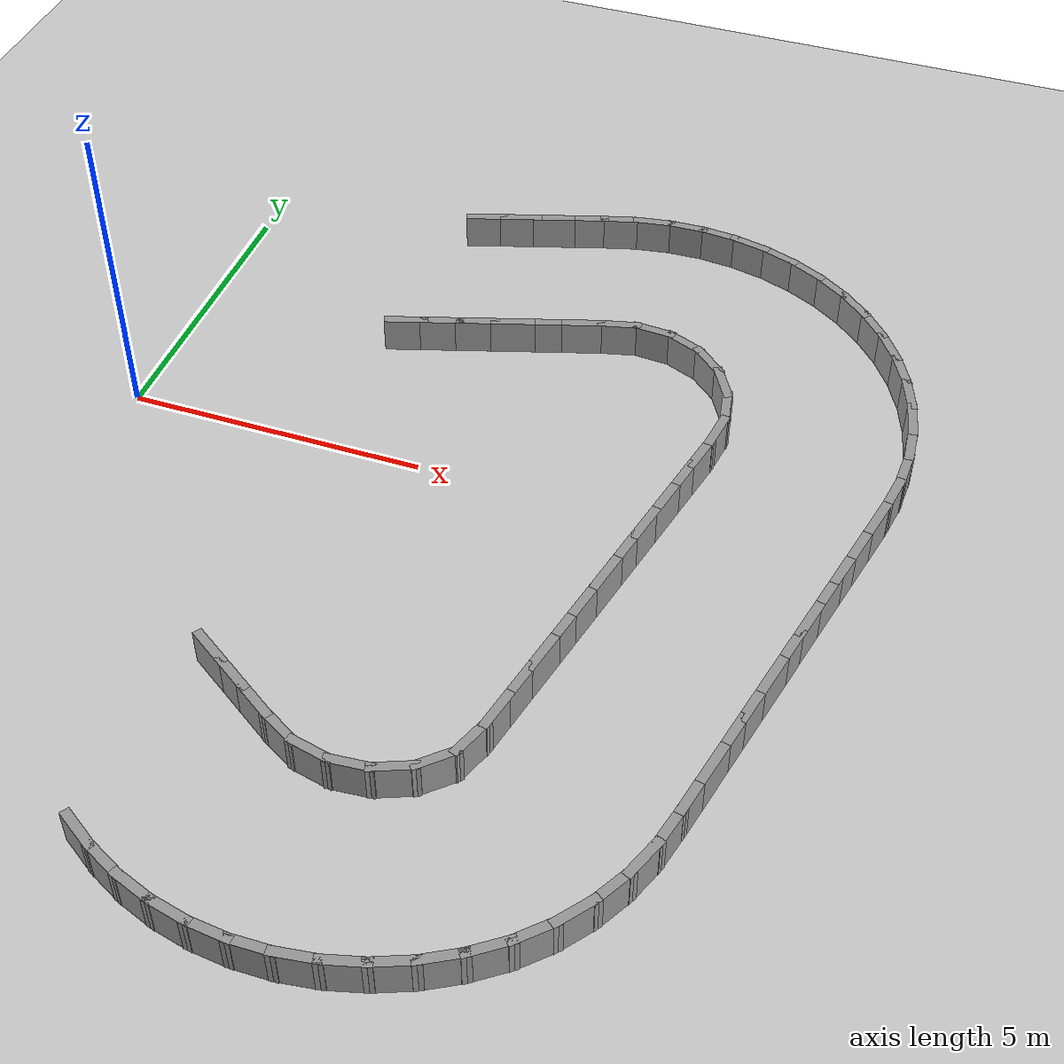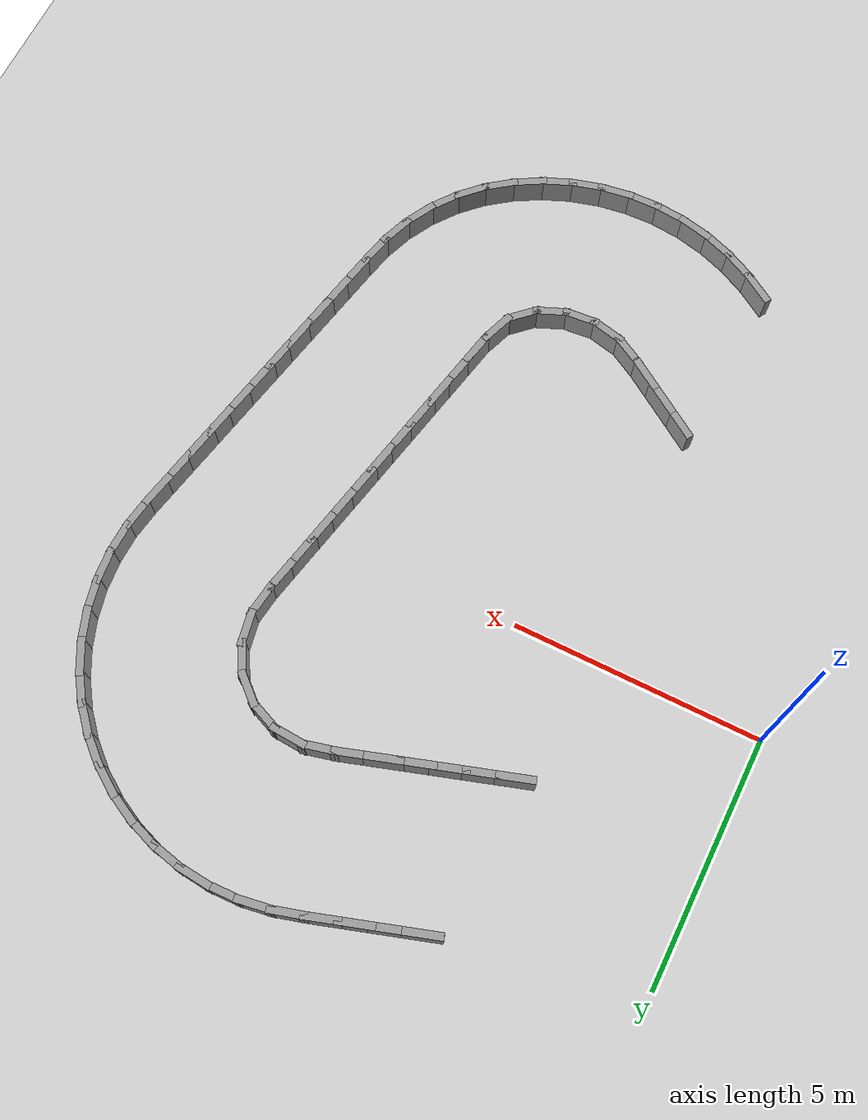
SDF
<sdf version="1.7">
 <world name="default">
  <model name="ground_plane">
   <static>1</static>
   <link name="link">
    <collision name="collision">
     <geometry><plane><normal>0 0 1</normal><size>100 100</size></plane></geometry>
     <surface><friction><ode><mu>100</mu><mu2>50</mu2></ode></friction></surface>
    </collision>
    <visual name="visual">
     <cast_shadows>0</cast_shadows>
     <geometry><plane><normal>0 0 1</normal><size>100 100</size></plane></geometry>
     <material>
      <script><uri>file://media/materials/scripts/gazebo.material</uri><name>Gazebo/Grey</name></script>
     </material>
    </visual>
   </link>
  </model>
  <model name="rand_turn_12">
   <link name="Wall_28">
    <collision name="Wall_28_Collision">
     <geometry><box><size>0.7500 0.1500 0.6000</size></box></geometry>
     <pose>0 0 0.3000 0 -0 0</pose>
    </collision>
    <visual name="Wall_28_Visual">
     <pose>0 0 0.3000 0 -0 0</pose>
     <geometry><box><size>0.7500 0.1500 0.6000</size></box></geometry>
     <material>
      <script><uri>file://media/materials/scripts/gazebo.material</uri><name>Gazebo/Grey</name></script>
      <ambient>1 1 1 1</ambient>
     </material>
    </visual>
    <pose>4.0115 5.9128 0 0 -0 0.30859</pose>
   </link>
   <link name="Wall_29">
    <collision name="Wall_29_Collision">
     <geometry><box><size>0.7500 0.1500 0.6000</size></box></geometry>
     <pose>0 0 0.3000 0 -0 0</pose>
    </collision>
    <visual name="Wall_29_Visual">
     <pose>0 0 0.3000 0 -0 0</pose>
     <geometry><box><size>0.7500 0.1500 0.6000</size></box></geometry>
     <material>
      <script><uri>file://media/materials/scripts/gazebo.material</uri><name>Gazebo/Grey</name></script>
      <ambient>1 1 1 1</ambient>
     </material>
    </visual>
    <pose>4.5832 6.0950 0 0 -0 0.30859</pose>
   </link>
   <link name="Wall_30">
    <collision name="Wall_30_Collision">
     <geometry><box><size>0.7500 0.1500 0.6000</size></box></geometry>
     <pose>0 0 0.3000 0 -0 0</pose>
    </collision>
    <visual name="Wall_30_Visual">
     <pose>0 0 0.3000 0 -0 0</pose>
     <geometry><box><size>0.7500 0.1500 0.6000</size></box></geometry>
     <material>
      <script><uri>file://media/materials/scripts/gazebo.material</uri><name>Gazebo/Grey</name></script>
      <ambient>1 1 1 1</ambient>
     </material>
    </visual>
    <pose>5.1549 6.2772 0 0 -0 0.30859</pose>
   </link>
   <link name="Wall_31">
    <collision name="Wall_31_Collision">
     <geometry><box><size>0.7500 0.1500 0.6000</size></box></geometry>
     <pose>0 0 0.3000 0 -0 0</pose>
    </collision>
    <visual name="Wall_31_Visual">
     <pose>0 0 0.3000 0 -0 0</pose>
     <geometry><box><size>0.7500 0.1500 0.6000</size></box></geometry>
     <material>
      <script><uri>file://media/materials/scripts/gazebo.material</uri><name>Gazebo/Grey</name></script>
      <ambient>1 1 1 1</ambient>
     </material>
    </visual>
    <pose>5.7265 6.4595 0 0 -0 0.30859</pose>
   </link>
   <link name="Wall_32">
    <collision name="Wall_32_Collision">
     <geometry><box><size>0.7497 0.1500 0.6000</size></box></geometry>
     <pose>0 0 0.3000 0 -0 0</pose>
    </collision>
    <visual name="Wall_32_Visual">
     <pose>0 0 0.3000 0 -0 0</pose>
     <geometry><box><size>0.7497 0.1500 0.6000</size></box></geometry>
     <material>
      <script><uri>file://media/materials/scripts/gazebo.material</uri><name>Gazebo/Grey</name></script>
      <ambient>1 1 1 1</ambient>
     </material>
    </visual>
    <pose>6.3008 6.6327 0 0 -0 0.27745</pose>
   </link>
   <link name="Wall_33">
    <collision name="Wall_33_Collision">
     <geometry><box><size>0.7496 0.1500 0.6000</size></box></geometry>
     <pose>0 0 0.3000 0 -0 0</pose>
    </collision>
    <visual name="Wall_33_Visual">
     <pose>0 0 0.3000 0 -0 0</pose>
     <geometry><box><size>0.7496 0.1500 0.6000</size></box></geometry>
     <material>
      <script><uri>file://media/materials/scripts/gazebo.material</uri><name>Gazebo/Grey</name></script>
      <ambient>1 1 1 1</ambient>
     </material>
    </visual>
    <pose>6.8852 6.7620 0 0 -0 0.15782</pose>
   </link>
   <link name="Wall_34">
    <collision name="Wall_34_Collision">
     <geometry><box><size>0.7496 0.1500 0.6000</size></box></geometry>
     <pose>0 0 0.3000 0 -0 0</pose>
    </collision>
    <visual name="Wall_34_Visual">
     <pose>0 0 0.3000 0 -0 0</pose>
     <geometry><box><size>0.7496 0.1500 0.6000</size></box></geometry>
     <material>
      <script><uri>file://media/materials/scripts/gazebo.material</uri><name>Gazebo/Grey</name></script>
      <ambient>1 1 1 1</ambient>
     </material>
    </visual>
    <pose>7.4810 6.8185 0 0 -0 0.03142</pose>
   </link>
   <link name="Wall_35">
    <collision name="Wall_35_Collision">
     <geometry><box><size>0.7496 0.1500 0.6000</size></box></geometry>
     <pose>0 0 0.3000 0 -0 0</pose>
    </collision>
    <visual name="Wall_35_Visual">
     <pose>0 0 0.3000 0 -0 0</pose>
     <geometry><box><size>0.7496 0.1500 0.6000</size></box></geometry>
     <material>
      <script><uri>file://media/materials/scripts/gazebo.material</uri><name>Gazebo/Grey</name></script>
      <ambient>1 1 1 1</ambient>
     </material>
    </visual>
    <pose>8.0791 6.7997 0 0 -0 -0.09425</pose>
   </link>
   <link name="Wall_36">
    <collision name="Wall_36_Collision">
     <geometry><box><size>0.7496 0.1500 0.6000</size></box></geometry>
     <pose>0 0 0.3000 0 -0 0</pose>
    </collision>
    <visual name="Wall_36_Visual">
     <pose>0 0 0.3000 0 -0 0</pose>
     <geometry><box><size>0.7496 0.1500 0.6000</size></box></geometry>
     <material>
      <script><uri>file://media/materials/scripts/gazebo.material</uri><name>Gazebo/Grey</name></script>
      <ambient>1 1 1 1</ambient>
     </material>
    </visual>
    <pose>8.6701 6.7061 0 0 -0 -0.21991</pose>
   </link>
   <link name="Wall_37">
    <collision name="Wall_37_Collision">
     <geometry><box><size>0.7496 0.1500 0.6000</size></box></geometry>
     <pose>0 0 0.3000 0 -0 0</pose>
    </collision>
    <visual name="Wall_37_Visual">
     <pose>0 0 0.3000 0 -0 0</pose>
     <geometry><box><size>0.7496 0.1500 0.6000</size></box></geometry>
     <material>
      <script><uri>file://media/materials/scripts/gazebo.material</uri><name>Gazebo/Grey</name></script>
      <ambient>1 1 1 1</ambient>
     </material>
    </visual>
    <pose>9.2447 6.5392 0 0 -0 -0.34558</pose>
   </link>
   <link name="Wall_38">
    <collision name="Wall_38_Collision">
     <geometry><box><size>0.7496 0.1500 0.6000</size></box></geometry>
     <pose>0 0 0.3000 0 -0 0</pose>
    </collision>
    <visual name="Wall_38_Visual">
     <pose>0 0 0.3000 0 -0 0</pose>
     <geometry><box><size>0.7496 0.1500 0.6000</size></box></geometry>
     <material>
      <script><uri>file://media/materials/scripts/gazebo.material</uri><name>Gazebo/Grey</name></script>
      <ambient>1 1 1 1</ambient>
     </material>
    </visual>
    <pose>9.7939 6.3015 0 0 -0 -0.47124</pose>
   </link>
   <link name="Wall_39">
    <collision name="Wall_39_Collision">
     <geometry><box><size>0.7496 0.1500 0.6000</size></box></geometry>
     <pose>0 0 0.3000 0 -0 0</pose>
    </collision>
    <visual name="Wall_39_Visual">
     <pose>0 0 0.3000 0 -0 0</pose>
     <geometry><box><size>0.7496 0.1500 0.6000</size></box></geometry>
     <material>
      <script><uri>file://media/materials/scripts/gazebo.material</uri><name>Gazebo/Grey</name></script>
      <ambient>1 1 1 1</ambient>
     </material>
    </visual>
    <pose>10.3090 5.9969 0 0 -0 -0.59690</pose>
   </link>
   <link name="Wall_40">
    <collision name="Wall_40_Collision">
     <geometry><box><size>0.7496 0.1500 0.6000</size></box></geometry>
     <pose>0 0 0.3000 0 -0 0</pose>
    </collision>
    <visual name="Wall_40_Visual">
     <pose>0 0 0.3000 0 -0 0</pose>
     <geometry><box><size>0.7496 0.1500 0.6000</size></box></geometry>
     <material>
      <script><uri>file://media/materials/scripts/gazebo.material</uri><name>Gazebo/Grey</name></script>
      <ambient>1 1 1 1</ambient>
     </material>
    </visual>
    <pose>10.7817 5.6301 0 0 -0 -0.72289</pose>
   </link>
   <link name="Wall_41">
    <collision name="Wall_41_Collision">
     <geometry><box><size>0.7496 0.1500 0.6000</size></box></geometry>
     <pose>0 0 0.3000 0 -0 0</pose>
    </collision>
    <visual name="Wall_41_Visual">
     <pose>0 0 0.3000 0 -0 0</pose>
     <geometry><box><size>0.7496 0.1500 0.6000</size></box></geometry>
     <material>
      <script><uri>file://media/materials/scripts/gazebo.material</uri><name>Gazebo/Grey</name></script>
      <ambient>1 1 1 1</ambient>
     </material>
    </visual>
    <pose>11.2046 5.2066 0 0 -0 -0.84928</pose>
   </link>
   <link name="Wall_42">
    <collision name="Wall_42_Collision">
     <geometry><box><size>0.7496 0.1500 0.6000</size></box></geometry>
     <pose>0 0 0.3000 0 -0 0</pose>
    </collision>
    <visual name="Wall_42_Visual">
     <pose>0 0 0.3000 0 -0 0</pose>
     <geometry><box><size>0.7496 0.1500 0.6000</size></box></geometry>
     <material>
      <script><uri>file://media/materials/scripts/gazebo.material</uri><name>Gazebo/Grey</name></script>
      <ambient>1 1 1 1</ambient>
     </material>
    </visual>
    <pose>11.5708 4.7334 0 0 -0 -0.97494</pose>
   </link>
   <link name="Wall_43">
    <collision name="Wall_43_Collision">
     <geometry><box><size>0.7496 0.1500 0.6000</size></box></geometry>
     <pose>0 0 0.3000 0 -0 0</pose>
    </collision>
    <visual name="Wall_43_Visual">
     <pose>0 0 0.3000 0 -0 0</pose>
     <geometry><box><size>0.7496 0.1500 0.6000</size></box></geometry>
     <material>
      <script><uri>file://media/materials/scripts/gazebo.material</uri><name>Gazebo/Grey</name></script>
      <ambient>1 1 1 1</ambient>
     </material>
    </visual>
    <pose>11.8749 4.2180 0 0 -0 -1.10061</pose>
   </link>
   <link name="Wall_44">
    <collision name="Wall_44_Collision">
     <geometry><box><size>0.7496 0.1500 0.6000</size></box></geometry>
     <pose>0 0 0.3000 0 -0 0</pose>
    </collision>
    <visual name="Wall_44_Visual">
     <pose>0 0 0.3000 0 -0 0</pose>
     <geometry><box><size>0.7496 0.1500 0.6000</size></box></geometry>
     <material>
      <script><uri>file://media/materials/scripts/gazebo.material</uri><name>Gazebo/Grey</name></script>
      <ambient>1 1 1 1</ambient>
     </material>
    </visual>
    <pose>12.1120 3.6686 0 0 -0 -1.22627</pose>
   </link>
   <link name="Wall_45">
    <collision name="Wall_45_Collision">
     <geometry><box><size>0.7496 0.1500 0.6000</size></box></geometry>
     <pose>0 0 0.3000 0 -0 0</pose>
    </collision>
    <visual name="Wall_45_Visual">
     <pose>0 0 0.3000 0 -0 0</pose>
     <geometry><box><size>0.7496 0.1500 0.6000</size></box></geometry>
     <material>
      <script><uri>file://media/materials/scripts/gazebo.material</uri><name>Gazebo/Grey</name></script>
      <ambient>1 1 1 1</ambient>
     </material>
    </visual>
    <pose>12.2783 3.0938 0 0 -0 -1.35194</pose>
   </link>
   <link name="Wall_46">
    <collision name="Wall_46_Collision">
     <geometry><box><size>0.7496 0.1500 0.6000</size></box></geometry>
     <pose>0 0 0.3000 0 -0 0</pose>
    </collision>
    <visual name="Wall_46_Visual">
     <pose>0 0 0.3000 0 -0 0</pose>
     <geometry><box><size>0.7496 0.1500 0.6000</size></box></geometry>
     <material>
      <script><uri>file://media/materials/scripts/gazebo.material</uri><name>Gazebo/Grey</name></script>
      <ambient>1 1 1 1</ambient>
     </material>
    </visual>
    <pose>12.3713 2.5027 0 0 -0 -1.47760</pose>
   </link>
   <link name="Wall_47">
    <collision name="Wall_47_Collision">
     <geometry><box><size>0.7496 0.1500 0.6000</size></box></geometry>
     <pose>0 0 0.3000 0 -0 0</pose>
    </collision>
    <visual name="Wall_47_Visual">
     <pose>0 0 0.3000 0 -0 0</pose>
     <geometry><box><size>0.7496 0.1500 0.6000</size></box></geometry>
     <material>
      <script><uri>file://media/materials/scripts/gazebo.material</uri><name>Gazebo/Grey</name></script>
      <ambient>1 1 1 1</ambient>
     </material>
    </visual>
    <pose>12.3894 1.9046 0 0 -0 -1.60360</pose>
   </link>
   <link name="Wall_48">
    <collision name="Wall_48_Collision">
     <geometry><box><size>0.7496 0.1500 0.6000</size></box></geometry>
     <pose>0 0 0.3000 0 -0 0</pose>
    </collision>
    <visual name="Wall_48_Visual">
     <pose>0 0 0.3000 0 -0 0</pose>
     <geometry><box><size>0.7496 0.1500 0.6000</size></box></geometry>
     <material>
      <script><uri>file://media/materials/scripts/gazebo.material</uri><name>Gazebo/Grey</name></script>
      <ambient>1 1 1 1</ambient>
     </material>
    </visual>
    <pose>12.3318 1.3089 0 0 -0 -1.73055</pose>
   </link>
   <link name="Wall_49">
    <collision name="Wall_49_Collision">
     <geometry><box><size>0.7500 0.1500 0.6000</size></box></geometry>
     <pose>0 0 0.3000 0 -0 0</pose>
    </collision>
    <visual name="Wall_49_Visual">
     <pose>0 0 0.3000 0 -0 0</pose>
     <geometry><box><size>0.7500 0.1500 0.6000</size></box></geometry>
     <material>
      <script><uri>file://media/materials/scripts/gazebo.material</uri><name>Gazebo/Grey</name></script>
      <ambient>1 1 1 1</ambient>
     </material>
    </visual>
    <pose>12.2216 0.7196 0 0 -0 -1.78095</pose>
   </link>
   <link name="Wall_50">
    <collision name="Wall_50_Collision">
     <geometry><box><size>0.7500 0.1500 0.6000</size></box></geometry>
     <pose>0 0 0.3000 0 -0 0</pose>
    </collision>
    <visual name="Wall_50_Visual">
     <pose>0 0 0.3000 0 -0 0</pose>
     <geometry><box><size>0.7500 0.1500 0.6000</size></box></geometry>
     <material>
      <script><uri>file://media/materials/scripts/gazebo.material</uri><name>Gazebo/Grey</name></script>
      <ambient>1 1 1 1</ambient>
     </material>
    </visual>
    <pose>12.0964 0.1328 0 0 -0 -1.78095</pose>
   </link>
   <link name="Wall_51">
    <collision name="Wall_51_Collision">
     <geometry><box><size>0.7500 0.1500 0.6000</size></box></geometry>
     <pose>0 0 0.3000 0 -0 0</pose>
    </collision>
    <visual name="Wall_51_Visual">
     <pose>0 0 0.3000 0 -0 0</pose>
     <geometry><box><size>0.7500 0.1500 0.6000</size></box></geometry>
     <material>
      <script><uri>file://media/materials/scripts/gazebo.material</uri><name>Gazebo/Grey</name></script>
      <ambient>1 1 1 1</ambient>
     </material>
    </visual>
    <pose>11.9712 -0.4540 0 0 -0 -1.78095</pose>
   </link>
   <link name="Wall_52">
    <collision name="Wall_52_Collision">
     <geometry><box><size>0.7500 0.1500 0.6000</size></box></geometry>
     <pose>0 0 0.3000 0 -0 0</pose>
    </collision>
    <visual name="Wall_52_Visual">
     <pose>0 0 0.3000 0 -0 0</pose>
     <geometry><box><size>0.7500 0.1500 0.6000</size></box></geometry>
     <material>
      <script><uri>file://media/materials/scripts/gazebo.material</uri><name>Gazebo/Grey</name></script>
      <ambient>1 1 1 1</ambient>
     </material>
    </visual>
    <pose>11.8461 -1.0408 0 0 -0 -1.78095</pose>
   </link>
   <link name="Wall_53">
    <collision name="Wall_53_Collision">
     <geometry><box><size>0.7500 0.1500 0.6000</size></box></geometry>
     <pose>0 0 0.3000 0 -0 0</pose>
    </collision>
    <visual name="Wall_53_Visual">
     <pose>0 0 0.3000 0 -0 0</pose>
     <geometry><box><size>0.7500 0.1500 0.6000</size></box></geometry>
     <material>
      <script><uri>file://media/materials/scripts/gazebo.material</uri><name>Gazebo/Grey</name></script>
      <ambient>1 1 1 1</ambient>
     </material>
    </visual>
    <pose>11.7209 -1.6276 0 0 -0 -1.78095</pose>
   </link>
   <link name="Wall_54">
    <collision name="Wall_54_Collision">
     <geometry><box><size>0.7500 0.1500 0.6000</size></box></geometry>
     <pose>0 0 0.3000 0 -0 0</pose>
    </collision>
    <visual name="Wall_54_Visual">
     <pose>0 0 0.3000 0 -0 0</pose>
     <geometry><box><size>0.7500 0.1500 0.6000</size></box></geometry>
     <material>
      <script><uri>file://media/materials/scripts/gazebo.material</uri><name>Gazebo/Grey</name></script>
      <ambient>1 1 1 1</ambient>
     </material>
    </visual>
    <pose>11.5957 -2.2144 0 0 -0 -1.78095</pose>
   </link>
   <link name="Wall_55">
    <collision name="Wall_55_Collision">
     <geometry><box><size>0.7500 0.1500 0.6000</size></box></geometry>
     <pose>0 0 0.3000 0 -0 0</pose>
    </collision>
    <visual name="Wall_55_Visual">
     <pose>0 0 0.3000 0 -0 0</pose>
     <geometry><box><size>0.7500 0.1500 0.6000</size></box></geometry>
     <material>
      <script><uri>file://media/materials/scripts/gazebo.material</uri><name>Gazebo/Grey</name></script>
      <ambient>1 1 1 1</ambient>
     </material>
    </visual>
    <pose>11.4706 -2.8012 0 0 -0 -1.78095</pose>
   </link>
   <link name="Wall_56">
    <collision name="Wall_56_Collision">
     <geometry><box><size>0.7500 0.1500 0.6000</size></box></geometry>
     <pose>0 0 0.3000 0 -0 0</pose>
    </collision>
    <visual name="Wall_56_Visual">
     <pose>0 0 0.3000 0 -0 0</pose>
     <geometry><box><size>0.7500 0.1500 0.6000</size></box></geometry>
     <material>
      <script><uri>file://media/materials/scripts/gazebo.material</uri><name>Gazebo/Grey</name></script>
      <ambient>1 1 1 1</ambient>
     </material>
    </visual>
    <pose>11.3454 -3.3880 0 0 -0 -1.78095</pose>
   </link>
   <link name="Wall_57">
    <collision name="Wall_57_Collision">
     <geometry><box><size>0.7500 0.1500 0.6000</size></box></geometry>
     <pose>0 0 0.3000 0 -0 0</pose>
    </collision>
    <visual name="Wall_57_Visual">
     <pose>0 0 0.3000 0 -0 0</pose>
     <geometry><box><size>0.7500 0.1500 0.6000</size></box></geometry>
     <material>
      <script><uri>file://media/materials/scripts/gazebo.material</uri><name>Gazebo/Grey</name></script>
      <ambient>1 1 1 1</ambient>
     </material>
    </visual>
    <pose>11.2202 -3.9748 0 0 -0 -1.78095</pose>
   </link>
   <link name="Wall_58">
    <collision name="Wall_58_Collision">
     <geometry><box><size>0.7500 0.1500 0.6000</size></box></geometry>
     <pose>0 0 0.3000 0 -0 0</pose>
    </collision>
    <visual name="Wall_58_Visual">
     <pose>0 0 0.3000 0 -0 0</pose>
     <geometry><box><size>0.7500 0.1500 0.6000</size></box></geometry>
     <material>
      <script><uri>file://media/materials/scripts/gazebo.material</uri><name>Gazebo/Grey</name></script>
      <ambient>1 1 1 1</ambient>
     </material>
    </visual>
    <pose>11.0951 -4.5616 0 0 -0 -1.78095</pose>
   </link>
   <link name="Wall_59">
    <collision name="Wall_59_Collision">
     <geometry><box><size>0.7500 0.1500 0.6000</size></box></geometry>
     <pose>0 0 0.3000 0 -0 0</pose>
    </collision>
    <visual name="Wall_59_Visual">
     <pose>0 0 0.3000 0 -0 0</pose>
     <geometry><box><size>0.7500 0.1500 0.6000</size></box></geometry>
     <material>
      <script><uri>file://media/materials/scripts/gazebo.material</uri><name>Gazebo/Grey</name></script>
      <ambient>1 1 1 1</ambient>
     </material>
    </visual>
    <pose>10.9699 -5.1484 0 0 -0 -1.78095</pose>
   </link>
   <link name="Wall_60">
    <collision name="Wall_60_Collision">
     <geometry><box><size>0.7498 0.1500 0.6000</size></box></geometry>
     <pose>0 0 0.3000 0 -0 0</pose>
    </collision>
    <visual name="Wall_60_Visual">
     <pose>0 0 0.3000 0 -0 0</pose>
     <geometry><box><size>0.7498 0.1500 0.6000</size></box></geometry>
     <material>
      <script><uri>file://media/materials/scripts/gazebo.material</uri><name>Gazebo/Grey</name></script>
      <ambient>1 1 1 1</ambient>
     </material>
    </visual>
    <pose>10.8380 -5.7336 0 0 -0 -1.80396</pose>
   </link>
   <link name="Wall_61">
    <collision name="Wall_61_Collision">
     <geometry><box><size>0.7495 0.1500 0.6000</size></box></geometry>
     <pose>0 0 0.3000 0 -0 0</pose>
    </collision>
    <visual name="Wall_61_Visual">
     <pose>0 0 0.3000 0 -0 0</pose>
     <geometry><box><size>0.7495 0.1500 0.6000</size></box></geometry>
     <material>
      <script><uri>file://media/materials/scripts/gazebo.material</uri><name>Gazebo/Grey</name></script>
      <ambient>1 1 1 1</ambient>
     </material>
    </visual>
    <pose>10.6629 -6.3058 0 0 -0 -1.93152</pose>
   </link>
   <link name="Wall_62">
    <collision name="Wall_62_Collision">
     <geometry><box><size>0.7495 0.1500 0.6000</size></box></geometry>
     <pose>0 0 0.3000 0 -0 0</pose>
    </collision>
    <visual name="Wall_62_Visual">
     <pose>0 0 0.3000 0 -0 0</pose>
     <geometry><box><size>0.7495 0.1500 0.6000</size></box></geometry>
     <material>
      <script><uri>file://media/materials/scripts/gazebo.material</uri><name>Gazebo/Grey</name></script>
      <ambient>1 1 1 1</ambient>
     </material>
    </visual>
    <pose>10.4126 -6.8489 0 0 -0 -2.07403</pose>
   </link>
   <link name="Wall_63">
    <collision name="Wall_63_Collision">
     <geometry><box><size>0.7495 0.1500 0.6000</size></box></geometry>
     <pose>0 0 0.3000 0 -0 0</pose>
    </collision>
    <visual name="Wall_63_Visual">
     <pose>0 0 0.3000 0 -0 0</pose>
     <geometry><box><size>0.7495 0.1500 0.6000</size></box></geometry>
     <material>
      <script><uri>file://media/materials/scripts/gazebo.material</uri><name>Gazebo/Grey</name></script>
      <ambient>1 1 1 1</ambient>
     </material>
    </visual>
    <pose>10.0875 -7.3508 0 0 -0 -2.21709</pose>
   </link>
   <link name="Wall_64">
    <collision name="Wall_64_Collision">
     <geometry><box><size>0.7495 0.1500 0.6000</size></box></geometry>
     <pose>0 0 0.3000 0 -0 0</pose>
    </collision>
    <visual name="Wall_64_Visual">
     <pose>0 0 0.3000 0 -0 0</pose>
     <geometry><box><size>0.7495 0.1500 0.6000</size></box></geometry>
     <material>
      <script><uri>file://media/materials/scripts/gazebo.material</uri><name>Gazebo/Grey</name></script>
      <ambient>1 1 1 1</ambient>
     </material>
    </visual>
    <pose>9.6943 -7.8013 0 0 -0 -2.35969</pose>
   </link>
   <link name="Wall_65">
    <collision name="Wall_65_Collision">
     <geometry><box><size>0.7495 0.1500 0.6000</size></box></geometry>
     <pose>0 0 0.3000 0 -0 0</pose>
    </collision>
    <visual name="Wall_65_Visual">
     <pose>0 0 0.3000 0 -0 0</pose>
     <geometry><box><size>0.7495 0.1500 0.6000</size></box></geometry>
     <material>
      <script><uri>file://media/materials/scripts/gazebo.material</uri><name>Gazebo/Grey</name></script>
      <ambient>1 1 1 1</ambient>
     </material>
    </visual>
    <pose>9.2407 -8.1908 0 0 -0 -2.50423</pose>
   </link>
   <link name="Wall_66">
    <collision name="Wall_66_Collision">
     <geometry><box><size>0.7496 0.1500 0.6000</size></box></geometry>
     <pose>0 0 0.3000 0 -0 0</pose>
    </collision>
    <visual name="Wall_66_Visual">
     <pose>0 0 0.3000 0 -0 0</pose>
     <geometry><box><size>0.7496 0.1500 0.6000</size></box></geometry>
     <material>
      <script><uri>file://media/materials/scripts/gazebo.material</uri><name>Gazebo/Grey</name></script>
      <ambient>1 1 1 1</ambient>
     </material>
    </visual>
    <pose>8.7387 -8.5166 0 0 -0 -2.62776</pose>
   </link>
   <link name="Wall_67">
    <collision name="Wall_67_Collision">
     <geometry><box><size>0.7496 0.1500 0.6000</size></box></geometry>
     <pose>0 0 0.3000 0 -0 0</pose>
    </collision>
    <visual name="Wall_67_Visual">
     <pose>0 0 0.3000 0 -0 0</pose>
     <geometry><box><size>0.7496 0.1500 0.6000</size></box></geometry>
     <material>
      <script><uri>file://media/materials/scripts/gazebo.material</uri><name>Gazebo/Grey</name></script>
      <ambient>1 1 1 1</ambient>
     </material>
    </visual>
    <pose>8.2004 -8.7781 0 0 -0 -2.75095</pose>
   </link>
   <link name="Wall_68">
    <collision name="Wall_68_Collision">
     <geometry><box><size>0.7496 0.1500 0.6000</size></box></geometry>
     <pose>0 0 0.3000 0 -0 0</pose>
    </collision>
    <visual name="Wall_68_Visual">
     <pose>0 0 0.3000 0 -0 0</pose>
     <geometry><box><size>0.7496 0.1500 0.6000</size></box></geometry>
     <material>
      <script><uri>file://media/materials/scripts/gazebo.material</uri><name>Gazebo/Grey</name></script>
      <ambient>1 1 1 1</ambient>
     </material>
    </visual>
    <pose>7.6341 -8.9717 0 0 -0 -2.87348</pose>
   </link>
   <link name="Wall_69">
    <collision name="Wall_69_Collision">
     <geometry><box><size>0.7496 0.1500 0.6000</size></box></geometry>
     <pose>0 0 0.3000 0 -0 0</pose>
    </collision>
    <visual name="Wall_69_Visual">
     <pose>0 0 0.3000 0 -0 0</pose>
     <geometry><box><size>0.7496 0.1500 0.6000</size></box></geometry>
     <material>
      <script><uri>file://media/materials/scripts/gazebo.material</uri><name>Gazebo/Grey</name></script>
      <ambient>1 1 1 1</ambient>
     </material>
    </visual>
    <pose>7.0484 -9.0947 0 0 -0 -2.99567</pose>
   </link>
   <link name="Wall_70">
    <collision name="Wall_70_Collision">
     <geometry><box><size>0.7496 0.1500 0.6000</size></box></geometry>
     <pose>0 0 0.3000 0 -0 0</pose>
    </collision>
    <visual name="Wall_70_Visual">
     <pose>0 0 0.3000 0 -0 0</pose>
     <geometry><box><size>0.7496 0.1500 0.6000</size></box></geometry>
     <material>
      <script><uri>file://media/materials/scripts/gazebo.material</uri><name>Gazebo/Grey</name></script>
      <ambient>1 1 1 1</ambient>
     </material>
    </visual>
    <pose>6.4520 -9.1454 0 0 -0 -3.11786</pose>
   </link>
   <link name="Wall_71">
    <collision name="Wall_71_Collision">
     <geometry><box><size>0.7496 0.1500 0.6000</size></box></geometry>
     <pose>0 0 0.3000 0 -0 0</pose>
    </collision>
    <visual name="Wall_71_Visual">
     <pose>0 0 0.3000 0 -0 0</pose>
     <geometry><box><size>0.7496 0.1500 0.6000</size></box></geometry>
     <material>
      <script><uri>file://media/materials/scripts/gazebo.material</uri><name>Gazebo/Grey</name></script>
      <ambient>1 1 1 1</ambient>
     </material>
    </visual>
    <pose>5.8540 -9.1231 0 0 -0 3.04313</pose>
   </link>
   <link name="Wall_72">
    <collision name="Wall_72_Collision">
     <geometry><box><size>0.7496 0.1500 0.6000</size></box></geometry>
     <pose>0 0 0.3000 0 -0 0</pose>
    </collision>
    <visual name="Wall_72_Visual">
     <pose>0 0 0.3000 0 -0 0</pose>
     <geometry><box><size>0.7496 0.1500 0.6000</size></box></geometry>
     <material>
      <script><uri>file://media/materials/scripts/gazebo.material</uri><name>Gazebo/Grey</name></script>
      <ambient>1 1 1 1</ambient>
     </material>
    </visual>
    <pose>5.2631 -9.0278 0 0 -0 2.92020</pose>
   </link>
   <link name="Wall_73">
    <collision name="Wall_73_Collision">
     <geometry><box><size>0.7496 0.1500 0.6000</size></box></geometry>
     <pose>0 0 0.3000 0 -0 0</pose>
    </collision>
    <visual name="Wall_73_Visual">
     <pose>0 0 0.3000 0 -0 0</pose>
     <geometry><box><size>0.7496 0.1500 0.6000</size></box></geometry>
     <material>
      <script><uri>file://media/materials/scripts/gazebo.material</uri><name>Gazebo/Grey</name></script>
      <ambient>1 1 1 1</ambient>
     </material>
    </visual>
    <pose>4.6884 -8.8608 0 0 -0 2.79741</pose>
   </link>
   <link name="Wall_74">
    <collision name="Wall_74_Collision">
     <geometry><box><size>0.7496 0.1500 0.6000</size></box></geometry>
     <pose>0 0 0.3000 0 -0 0</pose>
    </collision>
    <visual name="Wall_74_Visual">
     <pose>0 0 0.3000 0 -0 0</pose>
     <geometry><box><size>0.7496 0.1500 0.6000</size></box></geometry>
     <material>
      <script><uri>file://media/materials/scripts/gazebo.material</uri><name>Gazebo/Grey</name></script>
      <ambient>1 1 1 1</ambient>
     </material>
    </visual>
    <pose>4.1384 -8.6248 0 0 -0 2.67522</pose>
   </link>
   <link name="Wall_75">
    <collision name="Wall_75_Collision">
     <geometry><box><size>0.7499 0.1500 0.6000</size></box></geometry>
     <pose>0 0 0.3000 0 -0 0</pose>
    </collision>
    <visual name="Wall_75_Visual">
     <pose>0 0 0.3000 0 -0 0</pose>
     <geometry><box><size>0.7499 0.1500 0.6000</size></box></geometry>
     <material>
      <script><uri>file://media/materials/scripts/gazebo.material</uri><name>Gazebo/Grey</name></script>
      <ambient>1 1 1 1</ambient>
     </material>
    </visual>
    <pose>3.6180 -8.3283 0 0 -0 2.57213</pose>
   </link>
   <link name="Wall_114">
    <collision name="Wall_114_Collision">
     <geometry><box><size>0.7500 0.1500 0.6000</size></box></geometry>
     <pose>0 0 0.3000 0 -0 0</pose>
    </collision>
    <visual name="Wall_114_Visual">
     <pose>0 0 0.3000 0 -0 0</pose>
     <geometry><box><size>0.7500 0.1500 0.6000</size></box></geometry>
     <material>
      <script><uri>file://media/materials/scripts/gazebo.material</uri><name>Gazebo/Grey</name></script>
      <ambient>1 1 1 1</ambient>
     </material>
    </visual>
    <pose>3.7281 2.7239 0 0 -0 0.30859</pose>
   </link>
   <link name="Wall_115">
    <collision name="Wall_115_Collision">
     <geometry><box><size>0.7500 0.1500 0.6000</size></box></geometry>
     <pose>0 0 0.3000 0 -0 0</pose>
    </collision>
    <visual name="Wall_115_Visual">
     <pose>0 0 0.3000 0 -0 0</pose>
     <geometry><box><size>0.7500 0.1500 0.6000</size></box></geometry>
     <material>
      <script><uri>file://media/materials/scripts/gazebo.material</uri><name>Gazebo/Grey</name></script>
      <ambient>1 1 1 1</ambient>
     </material>
    </visual>
    <pose>4.2998 2.9061 0 0 -0 0.30859</pose>
   </link>
   <link name="Wall_116">
    <collision name="Wall_116_Collision">
     <geometry><box><size>0.7500 0.1500 0.6000</size></box></geometry>
     <pose>0 0 0.3000 0 -0 0</pose>
    </collision>
    <visual name="Wall_116_Visual">
     <pose>0 0 0.3000 0 -0 0</pose>
     <geometry><box><size>0.7500 0.1500 0.6000</size></box></geometry>
     <material>
      <script><uri>file://media/materials/scripts/gazebo.material</uri><name>Gazebo/Grey</name></script>
      <ambient>1 1 1 1</ambient>
     </material>
    </visual>
    <pose>4.8714 3.0883 0 0 -0 0.30859</pose>
   </link>
   <link name="Wall_117">
    <collision name="Wall_117_Collision">
     <geometry><box><size>0.7500 0.1500 0.6000</size></box></geometry>
     <pose>0 0 0.3000 0 -0 0</pose>
    </collision>
    <visual name="Wall_117_Visual">
     <pose>0 0 0.3000 0 -0 0</pose>
     <geometry><box><size>0.7500 0.1500 0.6000</size></box></geometry>
     <material>
      <script><uri>file://media/materials/scripts/gazebo.material</uri><name>Gazebo/Grey</name></script>
      <ambient>1 1 1 1</ambient>
     </material>
    </visual>
    <pose>5.4431 3.2705 0 0 -0 0.30859</pose>
   </link>
   <link name="Wall_118">
    <collision name="Wall_118_Collision">
     <geometry><box><size>0.7500 0.1500 0.6000</size></box></geometry>
     <pose>0 0 0.3000 0 -0 0</pose>
    </collision>
    <visual name="Wall_118_Visual">
     <pose>0 0 0.3000 0 -0 0</pose>
     <geometry><box><size>0.7500 0.1500 0.6000</size></box></geometry>
     <material>
      <script><uri>file://media/materials/scripts/gazebo.material</uri><name>Gazebo/Grey</name></script>
      <ambient>1 1 1 1</ambient>
     </material>
    </visual>
    <pose>6.0147 3.4528 0 0 -0 0.30859</pose>
   </link>
   <link name="Wall_119">
    <collision name="Wall_119_Collision">
     <geometry><box><size>0.7500 0.1500 0.6000</size></box></geometry>
     <pose>0 0 0.3000 0 -0 0</pose>
    </collision>
    <visual name="Wall_119_Visual">
     <pose>0 0 0.3000 0 -0 0</pose>
     <geometry><box><size>0.7500 0.1500 0.6000</size></box></geometry>
     <material>
      <script><uri>file://media/materials/scripts/gazebo.material</uri><name>Gazebo/Grey</name></script>
      <ambient>1 1 1 1</ambient>
     </material>
    </visual>
    <pose>6.5864 3.6350 0 0 -0 0.30859</pose>
   </link>
   <link name="Wall_120">
    <collision name="Wall_120_Collision">
     <geometry><box><size>0.7485 0.1500 0.6000</size></box></geometry>
     <pose>0 0 0.3000 0 -0 0</pose>
    </collision>
    <visual name="Wall_120_Visual">
     <pose>0 0 0.3000 0 -0 0</pose>
     <geometry><box><size>0.7485 0.1500 0.6000</size></box></geometry>
     <material>
      <script><uri>file://media/materials/scripts/gazebo.material</uri><name>Gazebo/Grey</name></script>
      <ambient>1 1 1 1</ambient>
     </material>
    </visual>
    <pose>7.1628 3.7978 0 0 -0 0.24182</pose>
   </link>
   <link name="Wall_121">
    <collision name="Wall_121_Collision">
     <geometry><box><size>0.7473 0.1500 0.6000</size></box></geometry>
     <pose>0 0 0.3000 0 -0 0</pose>
    </collision>
    <visual name="Wall_121_Visual">
     <pose>0 0 0.3000 0 -0 0</pose>
     <geometry><box><size>0.7473 0.1500 0.6000</size></box></geometry>
     <material>
      <script><uri>file://media/materials/scripts/gazebo.material</uri><name>Gazebo/Grey</name></script>
      <ambient>1 1 1 1</ambient>
     </material>
    </visual>
    <pose>7.7513 3.8496 0 0 -0 -0.06653</pose>
   </link>
   <link name="Wall_122">
    <collision name="Wall_122_Collision">
     <geometry><box><size>0.7472 0.1500 0.6000</size></box></geometry>
     <pose>0 0 0.3000 0 -0 0</pose>
    </collision>
    <visual name="Wall_122_Visual">
     <pose>0 0 0.3000 0 -0 0</pose>
     <geometry><box><size>0.7472 0.1500 0.6000</size></box></geometry>
     <material>
      <script><uri>file://media/materials/scripts/gazebo.material</uri><name>Gazebo/Grey</name></script>
      <ambient>1 1 1 1</ambient>
     </material>
    </visual>
    <pose>8.3247 3.7144 0 0 -0 -0.39673</pose>
   </link>
   <link name="Wall_123">
    <collision name="Wall_123_Collision">
     <geometry><box><size>0.7472 0.1500 0.6000</size></box></geometry>
     <pose>0 0 0.3000 0 -0 0</pose>
    </collision>
    <visual name="Wall_123_Visual">
     <pose>0 0 0.3000 0 -0 0</pose>
     <geometry><box><size>0.7472 0.1500 0.6000</size></box></geometry>
     <material>
      <script><uri>file://media/materials/scripts/gazebo.material</uri><name>Gazebo/Grey</name></script>
      <ambient>1 1 1 1</ambient>
     </material>
    </visual>
    <pose>8.8233 3.4005 0 0 -0 -0.72693</pose>
   </link>
   <link name="Wall_124">
    <collision name="Wall_124_Collision">
     <geometry><box><size>0.7472 0.1500 0.6000</size></box></geometry>
     <pose>0 0 0.3000 0 -0 0</pose>
    </collision>
    <visual name="Wall_124_Visual">
     <pose>0 0 0.3000 0 -0 0</pose>
     <geometry><box><size>0.7472 0.1500 0.6000</size></box></geometry>
     <material>
      <script><uri>file://media/materials/scripts/gazebo.material</uri><name>Gazebo/Grey</name></script>
      <ambient>1 1 1 1</ambient>
     </material>
    </visual>
    <pose>9.1932 2.9420 0 0 -0 -1.05713</pose>
   </link>
   <link name="Wall_125">
    <collision name="Wall_125_Collision">
     <geometry><box><size>0.7472 0.1500 0.6000</size></box></geometry>
     <pose>0 0 0.3000 0 -0 0</pose>
    </collision>
    <visual name="Wall_125_Visual">
     <pose>0 0 0.3000 0 -0 0</pose>
     <geometry><box><size>0.7472 0.1500 0.6000</size></box></geometry>
     <material>
      <script><uri>file://media/materials/scripts/gazebo.material</uri><name>Gazebo/Grey</name></script>
      <ambient>1 1 1 1</ambient>
     </material>
    </visual>
    <pose>9.3944 2.3883 0 0 -0 -1.38733</pose>
   </link>
   <link name="Wall_126">
    <collision name="Wall_126_Collision">
     <geometry><box><size>0.7482 0.1500 0.6000</size></box></geometry>
     <pose>0 0 0.3000 0 -0 0</pose>
    </collision>
    <visual name="Wall_126_Visual">
     <pose>0 0 0.3000 0 -0 0</pose>
     <geometry><box><size>0.7482 0.1500 0.6000</size></box></geometry>
     <material>
      <script><uri>file://media/materials/scripts/gazebo.material</uri><name>Gazebo/Grey</name></script>
      <ambient>1 1 1 1</ambient>
     </material>
    </visual>
    <pose>9.4093 1.7982 0 0 -0 -1.70334</pose>
   </link>
   <link name="Wall_127">
    <collision name="Wall_127_Collision">
     <geometry><box><size>0.7500 0.1500 0.6000</size></box></geometry>
     <pose>0 0 0.3000 0 -0 0</pose>
    </collision>
    <visual name="Wall_127_Visual">
     <pose>0 0 0.3000 0 -0 0</pose>
     <geometry><box><size>0.7500 0.1500 0.6000</size></box></geometry>
     <material>
      <script><uri>file://media/materials/scripts/gazebo.material</uri><name>Gazebo/Grey</name></script>
      <ambient>1 1 1 1</ambient>
     </material>
    </visual>
    <pose>9.3072 1.2083 0 0 -0 -1.78095</pose>
   </link>
   <link name="Wall_128">
    <collision name="Wall_128_Collision">
     <geometry><box><size>0.7500 0.1500 0.6000</size></box></geometry>
     <pose>0 0 0.3000 0 -0 0</pose>
    </collision>
    <visual name="Wall_128_Visual">
     <pose>0 0 0.3000 0 -0 0</pose>
     <geometry><box><size>0.7500 0.1500 0.6000</size></box></geometry>
     <material>
      <script><uri>file://media/materials/scripts/gazebo.material</uri><name>Gazebo/Grey</name></script>
      <ambient>1 1 1 1</ambient>
     </material>
    </visual>
    <pose>9.1820 0.6215 0 0 -0 -1.78095</pose>
   </link>
   <link name="Wall_129">
    <collision name="Wall_129_Collision">
     <geometry><box><size>0.7500 0.1500 0.6000</size></box></geometry>
     <pose>0 0 0.3000 0 -0 0</pose>
    </collision>
    <visual name="Wall_129_Visual">
     <pose>0 0 0.3000 0 -0 0</pose>
     <geometry><box><size>0.7500 0.1500 0.6000</size></box></geometry>
     <material>
      <script><uri>file://media/materials/scripts/gazebo.material</uri><name>Gazebo/Grey</name></script>
      <ambient>1 1 1 1</ambient>
     </material>
    </visual>
    <pose>9.0569 0.0348 0 0 -0 -1.78095</pose>
   </link>
   <link name="Wall_130">
    <collision name="Wall_130_Collision">
     <geometry><box><size>0.7500 0.1500 0.6000</size></box></geometry>
     <pose>0 0 0.3000 0 -0 0</pose>
    </collision>
    <visual name="Wall_130_Visual">
     <pose>0 0 0.3000 0 -0 0</pose>
     <geometry><box><size>0.7500 0.1500 0.6000</size></box></geometry>
     <material>
      <script><uri>file://media/materials/scripts/gazebo.material</uri><name>Gazebo/Grey</name></script>
      <ambient>1 1 1 1</ambient>
     </material>
    </visual>
    <pose>8.9317 -0.5520 0 0 -0 -1.78095</pose>
   </link>
   <link name="Wall_131">
    <collision name="Wall_131_Collision">
     <geometry><box><size>0.7500 0.1500 0.6000</size></box></geometry>
     <pose>0 0 0.3000 0 -0 0</pose>
    </collision>
    <visual name="Wall_131_Visual">
     <pose>0 0 0.3000 0 -0 0</pose>
     <geometry><box><size>0.7500 0.1500 0.6000</size></box></geometry>
     <material>
      <script><uri>file://media/materials/scripts/gazebo.material</uri><name>Gazebo/Grey</name></script>
      <ambient>1 1 1 1</ambient>
     </material>
    </visual>
    <pose>8.8065 -1.1388 0 0 -0 -1.78095</pose>
   </link>
   <link name="Wall_132">
    <collision name="Wall_132_Collision">
     <geometry><box><size>0.7500 0.1500 0.6000</size></box></geometry>
     <pose>0 0 0.3000 0 -0 0</pose>
    </collision>
    <visual name="Wall_132_Visual">
     <pose>0 0 0.3000 0 -0 0</pose>
     <geometry><box><size>0.7500 0.1500 0.6000</size></box></geometry>
     <material>
      <script><uri>file://media/materials/scripts/gazebo.material</uri><name>Gazebo/Grey</name></script>
      <ambient>1 1 1 1</ambient>
     </material>
    </visual>
    <pose>8.6814 -1.7256 0 0 -0 -1.78095</pose>
   </link>
   <link name="Wall_133">
    <collision name="Wall_133_Collision">
     <geometry><box><size>0.7500 0.1500 0.6000</size></box></geometry>
     <pose>0 0 0.3000 0 -0 0</pose>
    </collision>
    <visual name="Wall_133_Visual">
     <pose>0 0 0.3000 0 -0 0</pose>
     <geometry><box><size>0.7500 0.1500 0.6000</size></box></geometry>
     <material>
      <script><uri>file://media/materials/scripts/gazebo.material</uri><name>Gazebo/Grey</name></script>
      <ambient>1 1 1 1</ambient>
     </material>
    </visual>
    <pose>8.5562 -2.3124 0 0 -0 -1.78095</pose>
   </link>
   <link name="Wall_134">
    <collision name="Wall_134_Collision">
     <geometry><box><size>0.7500 0.1500 0.6000</size></box></geometry>
     <pose>0 0 0.3000 0 -0 0</pose>
    </collision>
    <visual name="Wall_134_Visual">
     <pose>0 0 0.3000 0 -0 0</pose>
     <geometry><box><size>0.7500 0.1500 0.6000</size></box></geometry>
     <material>
      <script><uri>file://media/materials/scripts/gazebo.material</uri><name>Gazebo/Grey</name></script>
      <ambient>1 1 1 1</ambient>
     </material>
    </visual>
    <pose>8.4310 -2.8992 0 0 -0 -1.78095</pose>
   </link>
   <link name="Wall_135">
    <collision name="Wall_135_Collision">
     <geometry><box><size>0.7500 0.1500 0.6000</size></box></geometry>
     <pose>0 0 0.3000 0 -0 0</pose>
    </collision>
    <visual name="Wall_135_Visual">
     <pose>0 0 0.3000 0 -0 0</pose>
     <geometry><box><size>0.7500 0.1500 0.6000</size></box></geometry>
     <material>
      <script><uri>file://media/materials/scripts/gazebo.material</uri><name>Gazebo/Grey</name></script>
      <ambient>1 1 1 1</ambient>
     </material>
    </visual>
    <pose>8.3059 -3.4860 0 0 -0 -1.78095</pose>
   </link>
   <link name="Wall_136">
    <collision name="Wall_136_Collision">
     <geometry><box><size>0.7500 0.1500 0.6000</size></box></geometry>
     <pose>0 0 0.3000 0 -0 0</pose>
    </collision>
    <visual name="Wall_136_Visual">
     <pose>0 0 0.3000 0 -0 0</pose>
     <geometry><box><size>0.7500 0.1500 0.6000</size></box></geometry>
     <material>
      <script><uri>file://media/materials/scripts/gazebo.material</uri><name>Gazebo/Grey</name></script>
      <ambient>1 1 1 1</ambient>
     </material>
    </visual>
    <pose>8.1807 -4.0728 0 0 -0 -1.78095</pose>
   </link>
   <link name="Wall_137">
    <collision name="Wall_137_Collision">
     <geometry><box><size>0.7500 0.1500 0.6000</size></box></geometry>
     <pose>0 0 0.3000 0 -0 0</pose>
    </collision>
    <visual name="Wall_137_Visual">
     <pose>0 0 0.3000 0 -0 0</pose>
     <geometry><box><size>0.7500 0.1500 0.6000</size></box></geometry>
     <material>
      <script><uri>file://media/materials/scripts/gazebo.material</uri><name>Gazebo/Grey</name></script>
      <ambient>1 1 1 1</ambient>
     </material>
    </visual>
    <pose>8.0555 -4.6596 0 0 -0 -1.78095</pose>
   </link>
   <link name="Wall_138">
    <collision name="Wall_138_Collision">
     <geometry><box><size>0.7456 0.1500 0.6000</size></box></geometry>
     <pose>0 0 0.3000 0 -0 0</pose>
    </collision>
    <visual name="Wall_138_Visual">
     <pose>0 0 0.3000 0 -0 0</pose>
     <geometry><box><size>0.7456 0.1500 0.6000</size></box></geometry>
     <material>
      <script><uri>file://media/materials/scripts/gazebo.material</uri><name>Gazebo/Grey</name></script>
      <ambient>1 1 1 1</ambient>
     </material>
    </visual>
    <pose>7.8898 -5.2324 0 0 -0 -1.92437</pose>
   </link>
   <link name="Wall_139">
    <collision name="Wall_139_Collision">
     <geometry><box><size>0.7445 0.1500 0.6000</size></box></geometry>
     <pose>0 0 0.3000 0 -0 0</pose>
    </collision>
    <visual name="Wall_139_Visual">
     <pose>0 0 0.3000 0 -0 0</pose>
     <geometry><box><size>0.7445 0.1500 0.6000</size></box></geometry>
     <material>
      <script><uri>file://media/materials/scripts/gazebo.material</uri><name>Gazebo/Grey</name></script>
      <ambient>1 1 1 1</ambient>
     </material>
    </visual>
    <pose>7.5697 -5.7149 0 0 -0 -2.38910</pose>
   </link>
   <link name="Wall_140">
    <collision name="Wall_140_Collision">
     <geometry><box><size>0.7476 0.1500 0.6000</size></box></geometry>
     <pose>0 0 0.3000 0 -0 0</pose>
    </collision>
    <visual name="Wall_140_Visual">
     <pose>0 0 0.3000 0 -0 0</pose>
     <geometry><box><size>0.7476 0.1500 0.6000</size></box></geometry>
     <material>
      <script><uri>file://media/materials/scripts/gazebo.material</uri><name>Gazebo/Grey</name></script>
      <ambient>1 1 1 1</ambient>
     </material>
    </visual>
    <pose>7.0769 -6.0330 0 0 -0 -2.74680</pose>
   </link>
   <link name="Wall_141">
    <collision name="Wall_141_Collision">
     <geometry><box><size>0.7476 0.1500 0.6000</size></box></geometry>
     <pose>0 0 0.3000 0 -0 0</pose>
    </collision>
    <visual name="Wall_141_Visual">
     <pose>0 0 0.3000 0 -0 0</pose>
     <geometry><box><size>0.7476 0.1500 0.6000</size></box></geometry>
     <material>
      <script><uri>file://media/materials/scripts/gazebo.material</uri><name>Gazebo/Grey</name></script>
      <ambient>1 1 1 1</ambient>
     </material>
    </visual>
    <pose>6.5034 -6.1738 0 0 -0 -3.05498</pose>
   </link>
   <link name="Wall_142">
    <collision name="Wall_142_Collision">
     <geometry><box><size>0.7476 0.1500 0.6000</size></box></geometry>
     <pose>0 0 0.3000 0 -0 0</pose>
    </collision>
    <visual name="Wall_142_Visual">
     <pose>0 0 0.3000 0 -0 0</pose>
     <geometry><box><size>0.7476 0.1500 0.6000</size></box></geometry>
     <material>
      <script><uri>file://media/materials/scripts/gazebo.material</uri><name>Gazebo/Grey</name></script>
      <ambient>1 1 1 1</ambient>
     </material>
    </visual>
    <pose>5.9142 -6.1340 0 0 -0 2.92023</pose>
   </link>
   <link name="Wall_143">
    <collision name="Wall_143_Collision">
     <geometry><box><size>0.7486 0.1500 0.6000</size></box></geometry>
     <pose>0 0 0.3000 0 -0 0</pose>
    </collision>
    <visual name="Wall_143_Visual">
     <pose>0 0 0.3000 0 -0 0</pose>
     <geometry><box><size>0.7486 0.1500 0.6000</size></box></geometry>
     <material>
      <script><uri>file://media/materials/scripts/gazebo.material</uri><name>Gazebo/Grey</name></script>
      <ambient>1 1 1 1</ambient>
     </material>
    </visual>
    <pose>5.3620 -5.9216 0 0 -0 2.62874</pose>
   </link>
   <link name="Wall_144">
    <collision name="Wall_144_Collision">
     <geometry><box><size>0.7500 0.1500 0.6000</size></box></geometry>
     <pose>0 0 0.3000 0 -0 0</pose>
    </collision>
    <visual name="Wall_144_Visual">
     <pose>0 0 0.3000 0 -0 0</pose>
     <geometry><box><size>0.7500 0.1500 0.6000</size></box></geometry>
     <material>
      <script><uri>file://media/materials/scripts/gazebo.material</uri><name>Gazebo/Grey</name></script>
      <ambient>1 1 1 1</ambient>
     </material>
    </visual>
    <pose>4.8506 -5.6098 0 0 -0 2.55933</pose>
   </link>
   <link name="Wall_145">
    <collision name="Wall_145_Collision">
     <geometry><box><size>0.7500 0.1500 0.6000</size></box></geometry>
     <pose>0 0 0.3000 0 -0 0</pose>
    </collision>
    <visual name="Wall_145_Visual">
     <pose>0 0 0.3000 0 -0 0</pose>
     <geometry><box><size>0.7500 0.1500 0.6000</size></box></geometry>
     <material>
      <script><uri>file://media/materials/scripts/gazebo.material</uri><name>Gazebo/Grey</name></script>
      <ambient>1 1 1 1</ambient>
     </material>
    </visual>
    <pose>4.3495 -5.2798 0 0 -0 2.55933</pose>
   </link>
   <link name="Wall_146">
    <collision name="Wall_146_Collision">
     <geometry><box><size>0.7500 0.1500 0.6000</size></box></geometry>
     <pose>0 0 0.3000 0 -0 0</pose>
    </collision>
    <visual name="Wall_146_Visual">
     <pose>0 0 0.3000 0 -0 0</pose>
     <geometry><box><size>0.7500 0.1500 0.6000</size></box></geometry>
     <material>
      <script><uri>file://media/materials/scripts/gazebo.material</uri><name>Gazebo/Grey</name></script>
      <ambient>1 1 1 1</ambient>
     </material>
    </visual>
    <pose>3.8484 -4.9499 0 0 -0 2.55933</pose>
   </link>
   <static>1</static>
  </model>
 </world>
</sdf>
